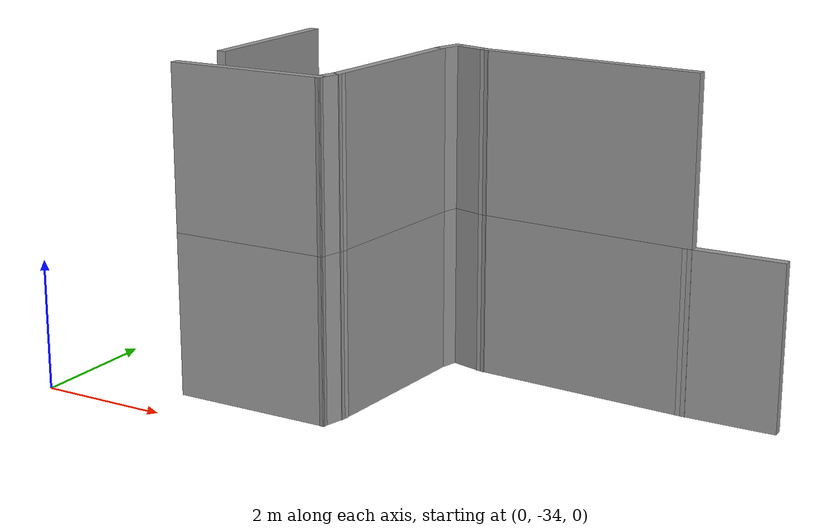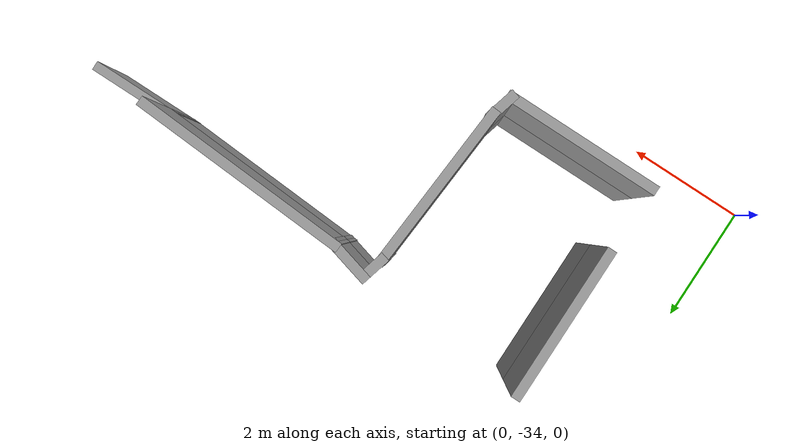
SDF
<sdf version="1.7">
 <model name="EnvDC01">
  <link name="Wall_215">
   <pose>9.25228 -30.2692 0 0 -0 3.14159</pose>
   <visual name="Wall_215_Visual">
    <pose>0 0 1.25 0 -0 0</pose>
    <geometry><box><size>1.5 0.15 2.5</size></box></geometry>
    <material>
     <script><uri>file://media/materials/scripts/gazebo.material</uri><name>Gazebo/Grey</name></script>
     <ambient>1 1 1 1</ambient>
     <shader type="pixel"/>
    </material>
    <meta><layer>0</layer></meta>
   </visual>
   <collision name="Wall_215_Collision">
    <pose>0 0 1.25 0 -0 0</pose>
    <geometry><box><size>1.5 0.15 2.5</size></box></geometry>
    <surface>
     <friction>
      <ode><mu>1</mu><mu2>1</mu2><fdir1>0 0 0</fdir1><slip1>0</slip1><slip2>0</slip2></ode>
      <torsional>
       <coefficient>1</coefficient>
       <patch_radius>0</patch_radius>
       <surface_radius>0</surface_radius>
       <use_patch_radius>1</use_patch_radius>
       <ode><slip>0</slip></ode>
      </torsional>
     </friction>
     <bounce><restitution_coefficient>0</restitution_coefficient><threshold>1e+06</threshold></bounce>
     <contact>
      <collide_without_contact>0</collide_without_contact>
      <collide_without_contact_bitmask>1</collide_without_contact_bitmask>
      <collide_bitmask>1</collide_bitmask>
      <ode>
       <soft_cfm>0</soft_cfm>
       <soft_erp>0.2</soft_erp>
       <kp>1e+13</kp>
       <kd>1</kd>
       <max_vel>0.01</max_vel>
       <min_depth>0</min_depth>
      </ode>
      <bullet>
       <split_impulse>1</split_impulse>
       <split_impulse_penetration_threshold>-0.01</split_impulse_penetration_threshold>
       <soft_cfm>0</soft_cfm>
       <soft_erp>0.2</soft_erp>
       <kp>1e+13</kp>
       <kd>1</kd>
      </bullet>
     </contact>
    </surface>
   </collision>
  </link>
  <link name="Wall_216">
   <pose>6.91506 -30.1665 0 0 -0 3.07989</pose>
   <visual name="Wall_216_Visual">
    <pose>0 0 1.25 0 -0 0</pose>
    <geometry><box><size>3.48078 0.15 2.5</size></box></geometry>
    <material>
     <script><uri>file://media/materials/scripts/gazebo.material</uri><name>Gazebo/Grey</name></script>
     <ambient>1 1 1 1</ambient>
     <shader type="pixel"/>
    </material>
    <meta><layer>0</layer></meta>
   </visual>
   <collision name="Wall_216_Collision">
    <pose>0 0 1.25 0 -0 0</pose>
    <geometry><box><size>3.48078 0.15 2.5</size></box></geometry>
    <surface>
     <friction>
      <ode><mu>1</mu><mu2>1</mu2><fdir1>0 0 0</fdir1><slip1>0</slip1><slip2>0</slip2></ode>
      <torsional>
       <coefficient>1</coefficient>
       <patch_radius>0</patch_radius>
       <surface_radius>0</surface_radius>
       <use_patch_radius>1</use_patch_radius>
       <ode><slip>0</slip></ode>
      </torsional>
     </friction>
     <bounce><restitution_coefficient>0</restitution_coefficient><threshold>1e+06</threshold></bounce>
     <contact>
      <collide_without_contact>0</collide_without_contact>
      <collide_without_contact_bitmask>1</collide_without_contact_bitmask>
      <collide_bitmask>1</collide_bitmask>
      <ode>
       <soft_cfm>0</soft_cfm>
       <soft_erp>0.2</soft_erp>
       <kp>1e+13</kp>
       <kd>1</kd>
       <max_vel>0.01</max_vel>
       <min_depth>0</min_depth>
      </ode>
      <bullet>
       <split_impulse>1</split_impulse>
       <split_impulse_penetration_threshold>-0.01</split_impulse_penetration_threshold>
       <soft_cfm>0</soft_cfm>
       <soft_erp>0.2</soft_erp>
       <kp>1e+13</kp>
       <kd>1</kd>
      </bullet>
     </contact>
    </surface>
   </collision>
  </link>
  <link name="Wall_217">
   <pose>4.96306 -29.9862 0 0 -0 2.87979</pose>
   <visual name="Wall_217_Visual">
    <pose>0 0 1.25 0 -0 0</pose>
    <geometry><box><size>0.75 0.15 2.5</size></box></geometry>
    <material>
     <script><uri>file://media/materials/scripts/gazebo.material</uri><name>Gazebo/Grey</name></script>
     <ambient>1 1 1 1</ambient>
     <shader type="pixel"/>
    </material>
    <meta><layer>0</layer></meta>
   </visual>
   <collision name="Wall_217_Collision">
    <pose>0 0 1.25 0 -0 0</pose>
    <geometry><box><size>0.75 0.15 2.5</size></box></geometry>
    <surface>
     <friction>
      <ode><mu>1</mu><mu2>1</mu2><fdir1>0 0 0</fdir1><slip1>0</slip1><slip2>0</slip2></ode>
      <torsional>
       <coefficient>1</coefficient>
       <patch_radius>0</patch_radius>
       <surface_radius>0</surface_radius>
       <use_patch_radius>1</use_patch_radius>
       <ode><slip>0</slip></ode>
      </torsional>
     </friction>
     <bounce><restitution_coefficient>0</restitution_coefficient><threshold>1e+06</threshold></bounce>
     <contact>
      <collide_without_contact>0</collide_without_contact>
      <collide_without_contact_bitmask>1</collide_without_contact_bitmask>
      <collide_bitmask>1</collide_bitmask>
      <ode>
       <soft_cfm>0</soft_cfm>
       <soft_erp>0.2</soft_erp>
       <kp>1e+13</kp>
       <kd>1</kd>
       <max_vel>0.01</max_vel>
       <min_depth>0</min_depth>
      </ode>
      <bullet>
       <split_impulse>1</split_impulse>
       <split_impulse_penetration_threshold>-0.01</split_impulse_penetration_threshold>
       <soft_cfm>0</soft_cfm>
       <soft_erp>0.2</soft_erp>
       <kp>1e+13</kp>
       <kd>1</kd>
      </bullet>
     </contact>
    </surface>
   </collision>
  </link>
  <link name="Wall_219">
   <pose>4.62798 -30.0776 0 0 0 -1.8326</pose>
   <visual name="Wall_219_Visual">
    <pose>0 0 1.25 0 -0 0</pose>
    <geometry><box><size>0.5 0.15 2.5</size></box></geometry>
    <material>
     <script><uri>file://media/materials/scripts/gazebo.material</uri><name>Gazebo/Grey</name></script>
     <ambient>1 1 1 1</ambient>
     <shader type="pixel"/>
    </material>
    <meta><layer>0</layer></meta>
   </visual>
   <collision name="Wall_219_Collision">
    <pose>0 0 1.25 0 -0 0</pose>
    <geometry><box><size>0.5 0.15 2.5</size></box></geometry>
    <surface>
     <friction>
      <ode><mu>1</mu><mu2>1</mu2><fdir1>0 0 0</fdir1><slip1>0</slip1><slip2>0</slip2></ode>
      <torsional>
       <coefficient>1</coefficient>
       <patch_radius>0</patch_radius>
       <surface_radius>0</surface_radius>
       <use_patch_radius>1</use_patch_radius>
       <ode><slip>0</slip></ode>
      </torsional>
     </friction>
     <bounce><restitution_coefficient>0</restitution_coefficient><threshold>1e+06</threshold></bounce>
     <contact>
      <collide_without_contact>0</collide_without_contact>
      <collide_without_contact_bitmask>1</collide_without_contact_bitmask>
      <collide_bitmask>1</collide_bitmask>
      <ode>
       <soft_cfm>0</soft_cfm>
       <soft_erp>0.2</soft_erp>
       <kp>1e+13</kp>
       <kd>1</kd>
       <max_vel>0.01</max_vel>
       <min_depth>0</min_depth>
      </ode>
      <bullet>
       <split_impulse>1</split_impulse>
       <split_impulse_penetration_threshold>-0.01</split_impulse_penetration_threshold>
       <soft_cfm>0</soft_cfm>
       <soft_erp>0.2</soft_erp>
       <kp>1e+13</kp>
       <kd>1</kd>
      </bullet>
     </contact>
    </surface>
   </collision>
  </link>
  <link name="Wall_220">
   <pose>4.48563 -31.5338 0 0 0 -1.64605</pose>
   <visual name="Wall_220_Visual">
    <pose>0 0 1.25 0 -0 0</pose>
    <geometry><box><size>2.73175 0.15 2.5</size></box></geometry>
    <material>
     <script><uri>file://media/materials/scripts/gazebo.material</uri><name>Gazebo/Grey</name></script>
     <ambient>1 1 1 1</ambient>
     <shader type="pixel"/>
    </material>
    <meta><layer>0</layer></meta>
   </visual>
   <collision name="Wall_220_Collision">
    <pose>0 0 1.25 0 -0 0</pose>
    <geometry><box><size>2.73175 0.15 2.5</size></box></geometry>
    <surface>
     <friction>
      <ode><mu>1</mu><mu2>1</mu2><fdir1>0 0 0</fdir1><slip1>0</slip1><slip2>0</slip2></ode>
      <torsional>
       <coefficient>1</coefficient>
       <patch_radius>0</patch_radius>
       <surface_radius>0</surface_radius>
       <use_patch_radius>1</use_patch_radius>
       <ode><slip>0</slip></ode>
      </torsional>
     </friction>
     <bounce><restitution_coefficient>0</restitution_coefficient><threshold>1e+06</threshold></bounce>
     <contact>
      <collide_without_contact>0</collide_without_contact>
      <collide_without_contact_bitmask>1</collide_without_contact_bitmask>
      <collide_bitmask>1</collide_bitmask>
      <ode>
       <soft_cfm>0</soft_cfm>
       <soft_erp>0.2</soft_erp>
       <kp>1e+13</kp>
       <kd>1</kd>
       <max_vel>0.01</max_vel>
       <min_depth>0</min_depth>
      </ode>
      <bullet>
       <split_impulse>1</split_impulse>
       <split_impulse_penetration_threshold>-0.01</split_impulse_penetration_threshold>
       <soft_cfm>0</soft_cfm>
       <soft_erp>0.2</soft_erp>
       <kp>1e+13</kp>
       <kd>1</kd>
      </bullet>
     </contact>
    </surface>
   </collision>
  </link>
  <link name="Wall_221">
   <pose>4.34328 -32.9901 0 0 0 -1.8326</pose>
   <visual name="Wall_221_Visual">
    <pose>0 0 1.25 0 -0 0</pose>
    <geometry><box><size>0.5 0.15 2.5</size></box></geometry>
    <material>
     <script><uri>file://media/materials/scripts/gazebo.material</uri><name>Gazebo/Grey</name></script>
     <ambient>1 1 1 1</ambient>
     <shader type="pixel"/>
    </material>
    <meta><layer>0</layer></meta>
   </visual>
   <collision name="Wall_221_Collision">
    <pose>0 0 1.25 0 -0 0</pose>
    <geometry><box><size>0.5 0.15 2.5</size></box></geometry>
    <surface>
     <friction>
      <ode><mu>1</mu><mu2>1</mu2><fdir1>0 0 0</fdir1><slip1>0</slip1><slip2>0</slip2></ode>
      <torsional>
       <coefficient>1</coefficient>
       <patch_radius>0</patch_radius>
       <surface_radius>0</surface_radius>
       <use_patch_radius>1</use_patch_radius>
       <ode><slip>0</slip></ode>
      </torsional>
     </friction>
     <bounce><restitution_coefficient>0</restitution_coefficient><threshold>1e+06</threshold></bounce>
     <contact>
      <collide_without_contact>0</collide_without_contact>
      <collide_without_contact_bitmask>1</collide_without_contact_bitmask>
      <collide_bitmask>1</collide_bitmask>
      <ode>
       <soft_cfm>0</soft_cfm>
       <soft_erp>0.2</soft_erp>
       <kp>1e+13</kp>
       <kd>1</kd>
       <max_vel>0.01</max_vel>
       <min_depth>0</min_depth>
      </ode>
      <bullet>
       <split_impulse>1</split_impulse>
       <split_impulse_penetration_threshold>-0.01</split_impulse_penetration_threshold>
       <soft_cfm>0</soft_cfm>
       <soft_erp>0.2</soft_erp>
       <kp>1e+13</kp>
       <kd>1</kd>
      </bullet>
     </contact>
    </surface>
   </collision>
  </link>
  <link name="Wall_222">
   <pose>3.12299 -33.1591 0 0 -0 3.14159</pose>
   <visual name="Wall_222_Visual">
    <pose>0 0 1.25 0 -0 0</pose>
    <geometry><box><size>2.5 0.15 2.5</size></box></geometry>
    <material>
     <script><uri>file://media/materials/scripts/gazebo.material</uri><name>Gazebo/Grey</name></script>
     <ambient>1 1 1 1</ambient>
     <shader type="pixel"/>
    </material>
    <meta><layer>0</layer></meta>
   </visual>
   <collision name="Wall_222_Collision">
    <pose>0 0 1.25 0 -0 0</pose>
    <geometry><box><size>2.5 0.15 2.5</size></box></geometry>
    <surface>
     <friction>
      <ode><mu>1</mu><mu2>1</mu2><fdir1>0 0 0</fdir1><slip1>0</slip1><slip2>0</slip2></ode>
      <torsional>
       <coefficient>1</coefficient>
       <patch_radius>0</patch_radius>
       <surface_radius>0</surface_radius>
       <use_patch_radius>1</use_patch_radius>
       <ode><slip>0</slip></ode>
      </torsional>
     </friction>
     <bounce><restitution_coefficient>0</restitution_coefficient><threshold>1e+06</threshold></bounce>
     <contact>
      <collide_without_contact>0</collide_without_contact>
      <collide_without_contact_bitmask>1</collide_without_contact_bitmask>
      <collide_bitmask>1</collide_bitmask>
      <ode>
       <soft_cfm>0</soft_cfm>
       <soft_erp>0.2</soft_erp>
       <kp>1e+13</kp>
       <kd>1</kd>
       <max_vel>0.01</max_vel>
       <min_depth>0</min_depth>
      </ode>
      <bullet>
       <split_impulse>1</split_impulse>
       <split_impulse_penetration_threshold>-0.01</split_impulse_penetration_threshold>
       <soft_cfm>0</soft_cfm>
       <soft_erp>0.2</soft_erp>
       <kp>1e+13</kp>
       <kd>1</kd>
      </bullet>
     </contact>
    </surface>
   </collision>
  </link>
  <link name="Wall_224">
   <pose>1.94799 -30.8841 0 0 -0 1.5708</pose>
   <visual name="Wall_224_Visual">
    <pose>0 0 1.25 0 -0 0</pose>
    <geometry><box><size>2.5 0.15 2.5</size></box></geometry>
    <material>
     <script><uri>file://media/materials/scripts/gazebo.material</uri><name>Gazebo/Grey</name></script>
     <ambient>1 1 1 1</ambient>
     <shader type="pixel"/>
    </material>
    <meta><layer>0</layer></meta>
   </visual>
   <collision name="Wall_224_Collision">
    <pose>0 0 1.25 0 -0 0</pose>
    <geometry><box><size>2.5 0.15 2.5</size></box></geometry>
    <surface>
     <friction>
      <ode><mu>1</mu><mu2>1</mu2><fdir1>0 0 0</fdir1><slip1>0</slip1><slip2>0</slip2></ode>
      <torsional>
       <coefficient>1</coefficient>
       <patch_radius>0</patch_radius>
       <surface_radius>0</surface_radius>
       <use_patch_radius>1</use_patch_radius>
       <ode><slip>0</slip></ode>
      </torsional>
     </friction>
     <bounce><restitution_coefficient>0</restitution_coefficient><threshold>1e+06</threshold></bounce>
     <contact>
      <collide_without_contact>0</collide_without_contact>
      <collide_without_contact_bitmask>1</collide_without_contact_bitmask>
      <collide_bitmask>1</collide_bitmask>
      <ode>
       <soft_cfm>0</soft_cfm>
       <soft_erp>0.2</soft_erp>
       <kp>1e+13</kp>
       <kd>1</kd>
       <max_vel>0.01</max_vel>
       <min_depth>0</min_depth>
      </ode>
      <bullet>
       <split_impulse>1</split_impulse>
       <split_impulse_penetration_threshold>-0.01</split_impulse_penetration_threshold>
       <soft_cfm>0</soft_cfm>
       <soft_erp>0.2</soft_erp>
       <kp>1e+13</kp>
       <kd>1</kd>
      </bullet>
     </contact>
    </surface>
   </collision>
  </link>
  <link name="Wall_387">
   <pose>6.91506 -30.1665 2.5 0 -0 3.07989</pose>
   <visual name="Wall_387_Visual">
    <pose>0 0 1.25 0 -0 0</pose>
    <geometry><box><size>3.48078 0.15 2.5</size></box></geometry>
    <material>
     <script><uri>file://media/materials/scripts/gazebo.material</uri><name>Gazebo/Grey</name></script>
     <ambient>1 1 1 1</ambient>
     <shader type="pixel"/>
    </material>
    <meta><layer>1</layer></meta>
   </visual>
   <collision name="Wall_387_Collision">
    <pose>0 0 1.25 0 -0 0</pose>
    <geometry><box><size>3.48078 0.15 2.5</size></box></geometry>
    <surface>
     <friction>
      <ode><mu>1</mu><mu2>1</mu2><fdir1>0 0 0</fdir1><slip1>0</slip1><slip2>0</slip2></ode>
      <torsional>
       <coefficient>1</coefficient>
       <patch_radius>0</patch_radius>
       <surface_radius>0</surface_radius>
       <use_patch_radius>1</use_patch_radius>
       <ode><slip>0</slip></ode>
      </torsional>
     </friction>
     <bounce><restitution_coefficient>0</restitution_coefficient><threshold>1e+06</threshold></bounce>
     <contact>
      <collide_without_contact>0</collide_without_contact>
      <collide_without_contact_bitmask>1</collide_without_contact_bitmask>
      <collide_bitmask>1</collide_bitmask>
      <ode>
       <soft_cfm>0</soft_cfm>
       <soft_erp>0.2</soft_erp>
       <kp>1e+13</kp>
       <kd>1</kd>
       <max_vel>0.01</max_vel>
       <min_depth>0</min_depth>
      </ode>
      <bullet>
       <split_impulse>1</split_impulse>
       <split_impulse_penetration_threshold>-0.01</split_impulse_penetration_threshold>
       <soft_cfm>0</soft_cfm>
       <soft_erp>0.2</soft_erp>
       <kp>1e+13</kp>
       <kd>1</kd>
      </bullet>
     </contact>
    </surface>
   </collision>
  </link>
  <link name="Wall_388">
   <pose>4.96306 -29.9862 2.5 0 -0 2.87979</pose>
   <visual name="Wall_388_Visual">
    <pose>0 0 1.25 0 -0 0</pose>
    <geometry><box><size>0.75 0.15 2.5</size></box></geometry>
    <material>
     <script><uri>file://media/materials/scripts/gazebo.material</uri><name>Gazebo/Grey</name></script>
     <ambient>1 1 1 1</ambient>
     <shader type="pixel"/>
    </material>
    <meta><layer>1</layer></meta>
   </visual>
   <collision name="Wall_388_Collision">
    <pose>0 0 1.25 0 -0 0</pose>
    <geometry><box><size>0.75 0.15 2.5</size></box></geometry>
    <surface>
     <friction>
      <ode><mu>1</mu><mu2>1</mu2><fdir1>0 0 0</fdir1><slip1>0</slip1><slip2>0</slip2></ode>
      <torsional>
       <coefficient>1</coefficient>
       <patch_radius>0</patch_radius>
       <surface_radius>0</surface_radius>
       <use_patch_radius>1</use_patch_radius>
       <ode><slip>0</slip></ode>
      </torsional>
     </friction>
     <bounce><restitution_coefficient>0</restitution_coefficient><threshold>1e+06</threshold></bounce>
     <contact>
      <collide_without_contact>0</collide_without_contact>
      <collide_without_contact_bitmask>1</collide_without_contact_bitmask>
      <collide_bitmask>1</collide_bitmask>
      <ode>
       <soft_cfm>0</soft_cfm>
       <soft_erp>0.2</soft_erp>
       <kp>1e+13</kp>
       <kd>1</kd>
       <max_vel>0.01</max_vel>
       <min_depth>0</min_depth>
      </ode>
      <bullet>
       <split_impulse>1</split_impulse>
       <split_impulse_penetration_threshold>-0.01</split_impulse_penetration_threshold>
       <soft_cfm>0</soft_cfm>
       <soft_erp>0.2</soft_erp>
       <kp>1e+13</kp>
       <kd>1</kd>
      </bullet>
     </contact>
    </surface>
   </collision>
  </link>
  <link name="Wall_389">
   <pose>4.62798 -30.0776 2.5 0 0 -1.8326</pose>
   <visual name="Wall_389_Visual">
    <pose>0 0 1.25 0 -0 0</pose>
    <geometry><box><size>0.5 0.15 2.5</size></box></geometry>
    <material>
     <script><uri>file://media/materials/scripts/gazebo.material</uri><name>Gazebo/Grey</name></script>
     <ambient>1 1 1 1</ambient>
     <shader type="pixel"/>
    </material>
    <meta><layer>1</layer></meta>
   </visual>
   <collision name="Wall_389_Collision">
    <pose>0 0 1.25 0 -0 0</pose>
    <geometry><box><size>0.5 0.15 2.5</size></box></geometry>
    <surface>
     <friction>
      <ode><mu>1</mu><mu2>1</mu2><fdir1>0 0 0</fdir1><slip1>0</slip1><slip2>0</slip2></ode>
      <torsional>
       <coefficient>1</coefficient>
       <patch_radius>0</patch_radius>
       <surface_radius>0</surface_radius>
       <use_patch_radius>1</use_patch_radius>
       <ode><slip>0</slip></ode>
      </torsional>
     </friction>
     <bounce><restitution_coefficient>0</restitution_coefficient><threshold>1e+06</threshold></bounce>
     <contact>
      <collide_without_contact>0</collide_without_contact>
      <collide_without_contact_bitmask>1</collide_without_contact_bitmask>
      <collide_bitmask>1</collide_bitmask>
      <ode>
       <soft_cfm>0</soft_cfm>
       <soft_erp>0.2</soft_erp>
       <kp>1e+13</kp>
       <kd>1</kd>
       <max_vel>0.01</max_vel>
       <min_depth>0</min_depth>
      </ode>
      <bullet>
       <split_impulse>1</split_impulse>
       <split_impulse_penetration_threshold>-0.01</split_impulse_penetration_threshold>
       <soft_cfm>0</soft_cfm>
       <soft_erp>0.2</soft_erp>
       <kp>1e+13</kp>
       <kd>1</kd>
      </bullet>
     </contact>
    </surface>
   </collision>
  </link>
  <link name="Wall_390">
   <pose>4.48563 -31.5338 2.5 0 0 -1.64605</pose>
   <visual name="Wall_390_Visual">
    <pose>0 0 1.25 0 -0 0</pose>
    <geometry><box><size>2.73175 0.15 2.5</size></box></geometry>
    <material>
     <script><uri>file://media/materials/scripts/gazebo.material</uri><name>Gazebo/Grey</name></script>
     <ambient>1 1 1 1</ambient>
     <shader type="pixel"/>
    </material>
    <meta><layer>1</layer></meta>
   </visual>
   <collision name="Wall_390_Collision">
    <pose>0 0 1.25 0 -0 0</pose>
    <geometry><box><size>2.73175 0.15 2.5</size></box></geometry>
    <surface>
     <friction>
      <ode><mu>1</mu><mu2>1</mu2><fdir1>0 0 0</fdir1><slip1>0</slip1><slip2>0</slip2></ode>
      <torsional>
       <coefficient>1</coefficient>
       <patch_radius>0</patch_radius>
       <surface_radius>0</surface_radius>
       <use_patch_radius>1</use_patch_radius>
       <ode><slip>0</slip></ode>
      </torsional>
     </friction>
     <bounce><restitution_coefficient>0</restitution_coefficient><threshold>1e+06</threshold></bounce>
     <contact>
      <collide_without_contact>0</collide_without_contact>
      <collide_without_contact_bitmask>1</collide_without_contact_bitmask>
      <collide_bitmask>1</collide_bitmask>
      <ode>
       <soft_cfm>0</soft_cfm>
       <soft_erp>0.2</soft_erp>
       <kp>1e+13</kp>
       <kd>1</kd>
       <max_vel>0.01</max_vel>
       <min_depth>0</min_depth>
      </ode>
      <bullet>
       <split_impulse>1</split_impulse>
       <split_impulse_penetration_threshold>-0.01</split_impulse_penetration_threshold>
       <soft_cfm>0</soft_cfm>
       <soft_erp>0.2</soft_erp>
       <kp>1e+13</kp>
       <kd>1</kd>
      </bullet>
     </contact>
    </surface>
   </collision>
  </link>
  <link name="Wall_391">
   <pose>4.34328 -32.9901 2.5 0 0 -1.8326</pose>
   <visual name="Wall_391_Visual">
    <pose>0 0 1.25 0 -0 0</pose>
    <geometry><box><size>0.5 0.15 2.5</size></box></geometry>
    <material>
     <script><uri>file://media/materials/scripts/gazebo.material</uri><name>Gazebo/Grey</name></script>
     <ambient>1 1 1 1</ambient>
     <shader type="pixel"/>
    </material>
    <meta><layer>1</layer></meta>
   </visual>
   <collision name="Wall_391_Collision">
    <pose>0 0 1.25 0 -0 0</pose>
    <geometry><box><size>0.5 0.15 2.5</size></box></geometry>
    <surface>
     <friction>
      <ode><mu>1</mu><mu2>1</mu2><fdir1>0 0 0</fdir1><slip1>0</slip1><slip2>0</slip2></ode>
      <torsional>
       <coefficient>1</coefficient>
       <patch_radius>0</patch_radius>
       <surface_radius>0</surface_radius>
       <use_patch_radius>1</use_patch_radius>
       <ode><slip>0</slip></ode>
      </torsional>
     </friction>
     <bounce><restitution_coefficient>0</restitution_coefficient><threshold>1e+06</threshold></bounce>
     <contact>
      <collide_without_contact>0</collide_without_contact>
      <collide_without_contact_bitmask>1</collide_without_contact_bitmask>
      <collide_bitmask>1</collide_bitmask>
      <ode>
       <soft_cfm>0</soft_cfm>
       <soft_erp>0.2</soft_erp>
       <kp>1e+13</kp>
       <kd>1</kd>
       <max_vel>0.01</max_vel>
       <min_depth>0</min_depth>
      </ode>
      <bullet>
       <split_impulse>1</split_impulse>
       <split_impulse_penetration_threshold>-0.01</split_impulse_penetration_threshold>
       <soft_cfm>0</soft_cfm>
       <soft_erp>0.2</soft_erp>
       <kp>1e+13</kp>
       <kd>1</kd>
      </bullet>
     </contact>
    </surface>
   </collision>
  </link>
  <link name="Wall_392">
   <pose>3.12299 -33.1591 2.5 0 -0 3.14159</pose>
   <visual name="Wall_392_Visual">
    <pose>0 0 1.25 0 -0 0</pose>
    <geometry><box><size>2.5 0.15 2.5</size></box></geometry>
    <material>
     <script><uri>file://media/materials/scripts/gazebo.material</uri><name>Gazebo/Grey</name></script>
     <ambient>1 1 1 1</ambient>
     <shader type="pixel"/>
    </material>
    <meta><layer>1</layer></meta>
   </visual>
   <collision name="Wall_392_Collision">
    <pose>0 0 1.25 0 -0 0</pose>
    <geometry><box><size>2.5 0.15 2.5</size></box></geometry>
    <surface>
     <friction>
      <ode><mu>1</mu><mu2>1</mu2><fdir1>0 0 0</fdir1><slip1>0</slip1><slip2>0</slip2></ode>
      <torsional>
       <coefficient>1</coefficient>
       <patch_radius>0</patch_radius>
       <surface_radius>0</surface_radius>
       <use_patch_radius>1</use_patch_radius>
       <ode><slip>0</slip></ode>
      </torsional>
     </friction>
     <bounce><restitution_coefficient>0</restitution_coefficient><threshold>1e+06</threshold></bounce>
     <contact>
      <collide_without_contact>0</collide_without_contact>
      <collide_without_contact_bitmask>1</collide_without_contact_bitmask>
      <collide_bitmask>1</collide_bitmask>
      <ode>
       <soft_cfm>0</soft_cfm>
       <soft_erp>0.2</soft_erp>
       <kp>1e+13</kp>
       <kd>1</kd>
       <max_vel>0.01</max_vel>
       <min_depth>0</min_depth>
      </ode>
      <bullet>
       <split_impulse>1</split_impulse>
       <split_impulse_penetration_threshold>-0.01</split_impulse_penetration_threshold>
       <soft_cfm>0</soft_cfm>
       <soft_erp>0.2</soft_erp>
       <kp>1e+13</kp>
       <kd>1</kd>
      </bullet>
     </contact>
    </surface>
   </collision>
  </link>
  <link name="Wall_394">
   <pose>1.94799 -30.8841 2.5 0 -0 1.5708</pose>
   <visual name="Wall_394_Visual">
    <pose>0 0 1.25 0 -0 0</pose>
    <geometry><box><size>2.5 0.15 2.5</size></box></geometry>
    <material>
     <script><uri>file://media/materials/scripts/gazebo.material</uri><name>Gazebo/Grey</name></script>
     <ambient>1 1 1 1</ambient>
     <shader type="pixel"/>
    </material>
    <meta><layer>1</layer></meta>
   </visual>
   <collision name="Wall_394_Collision">
    <pose>0 0 1.25 0 -0 0</pose>
    <geometry><box><size>2.5 0.15 2.5</size></box></geometry>
    <surface>
     <friction>
      <ode><mu>1</mu><mu2>1</mu2><fdir1>0 0 0</fdir1><slip1>0</slip1><slip2>0</slip2></ode>
      <torsional>
       <coefficient>1</coefficient>
       <patch_radius>0</patch_radius>
       <surface_radius>0</surface_radius>
       <use_patch_radius>1</use_patch_radius>
       <ode><slip>0</slip></ode>
      </torsional>
     </friction>
     <bounce><restitution_coefficient>0</restitution_coefficient><threshold>1e+06</threshold></bounce>
     <contact>
      <collide_without_contact>0</collide_without_contact>
      <collide_without_contact_bitmask>1</collide_without_contact_bitmask>
      <collide_bitmask>1</collide_bitmask>
      <ode>
       <soft_cfm>0</soft_cfm>
       <soft_erp>0.2</soft_erp>
       <kp>1e+13</kp>
       <kd>1</kd>
       <max_vel>0.01</max_vel>
       <min_depth>0</min_depth>
      </ode>
      <bullet>
       <split_impulse>1</split_impulse>
       <split_impulse_penetration_threshold>-0.01</split_impulse_penetration_threshold>
       <soft_cfm>0</soft_cfm>
       <soft_erp>0.2</soft_erp>
       <kp>1e+13</kp>
       <kd>1</kd>
      </bullet>
     </contact>
    </surface>
   </collision>
  </link>
  <static>1</static>
 </model>
</sdf>
